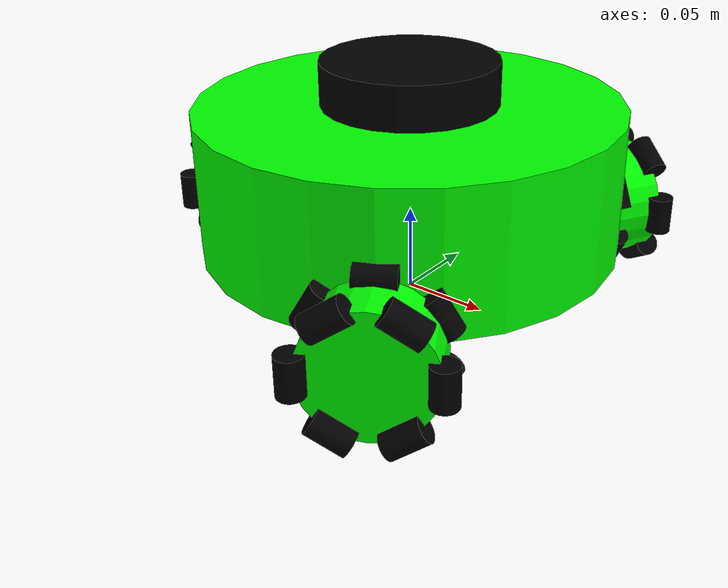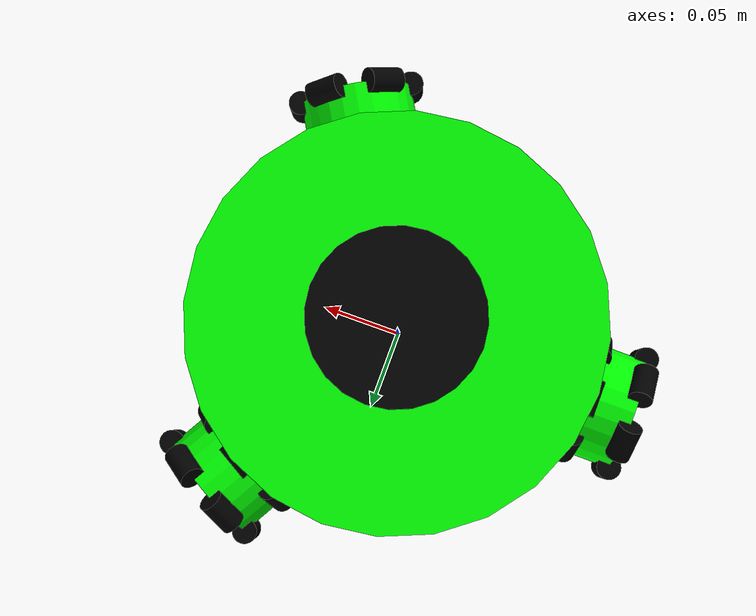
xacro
<?xml version="1.0"?>

<robot name="humblebot" xmlns:xacro="http://www.ros.org/wiki/xacro">

    <!-- Common Properties -->
    <xacro:include filename="$(find humblebot_description)/urdf/common_properties.xacro" />

    <!-- Mobile Base -->
    <xacro:include filename="$(find humblebot_description)/urdf/mobile_base.xacro" />

    <!-- Lidar -->
    <xacro:include filename="$(find humblebot_description)/urdf/lidar.xacro" />

</robot>

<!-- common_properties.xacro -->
<robot xmlns:xacro="http://www.ros.org/wiki/xacro">

    <!-- colors-->

    <material name="green">
        <color rgba="0 1 0 1" />
    </material>

    <material name="black">
        <color rgba="0 0 0 1" />
    </material>

    <!-- Inertia -->

    <xacro:macro name="cylinder_inertia" params="mass radius length o_xyz o_rpy">
        <inertial>
            <origin xyz="${o_xyz}" rpy="${o_rpy}" />
            <mass value="${mass}" />
            <inertia
                ixx="${(1/12.0)*mass*(3*radius*radius + length*length)}" ixy="0.0" ixz="0.0"
                iyy="${(1/12.0)*mass*(3*radius*radius + length*length)}" iyz="0.0"
                izz="${(1/2.0)*mass*radius*radius}"
            />
        </inertial>
    </xacro:macro>

</robot>

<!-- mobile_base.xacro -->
<robot xmlns:xacro="http://www.ros.org/wiki/xacro">

    <!-- variables -->
        <!-- Dimensions are in mm, mass is in grams -->
        <xacro:property name="base_radius" value="0.12" />
        <xacro:property name="base_length" value="0.08" />
        <xacro:property name="base_mass" value="300.0" />

        <xacro:property name="wheel_radius" value="0.035" />
        <xacro:property name="wheel_length" value="0.03" />
        <xacro:property name="wheel_mass" value="20.0" />

        <xacro:property name="roller_radius" value="0.0075" />
        <xacro:property name="roller_length" value="0.022" />
        <xacro:property name="roller_mass" value="3.0" />

    <!-- Calculated/Constant variables -->

        <!-- 60 deg and -60 deg components -->
        <xacro:property name="cos60" value="${0.5}" />
        <xacro:property name="sin60" value="${0.8660254037844386}" />
        <xacro:property name="cos_m60" value="${0.5}" />
        <xacro:property name="sin_m60" value="${-0.8660254037844386}" />
        <!-- 180 deg components -->
        <xacro:property name="cos180" value="${-1.0}" />
        <xacro:property name="sin180" value="${0.0}" />

        <!-- wheel center positions (derived from base radius and angle) -->
        <xacro:property name="wheel60_x" value="${base_radius * cos60}" />
        <xacro:property name="wheel60_y" value="${base_radius * sin60}" />
        <xacro:property name="wheel300_x" value="${base_radius * cos180}" />
        <xacro:property name="wheel300_y" value="${base_radius * sin180}" />
        <xacro:property name="wheel180_x" value="${base_radius * cos_m60}" />
        <xacro:property name="wheel180_y" value="${base_radius * sin_m60}" />
        <xacro:property name="half_wheel_radius" value="${wheel_radius / 2.0}" />

    <!-- macros -->

        <xacro:macro name="wheel_link" params="wheel_degree">
            <link name="wheel_${wheel_degree}deg">
                <visual>
                    <geometry>
                        <cylinder radius="${wheel_radius}" length="${wheel_length}" />
                    </geometry>
                    <origin xyz="0 0 ${wheel_length / 2.0}" rpy="0 0 0" />
                    <material name="green" />
                </visual>
                <collision>
                    <geometry>
                        <cylinder radius="${wheel_radius}" length="${wheel_length}" />
                    </geometry>
                    <origin xyz="0 0 ${wheel_length / 2.0}" rpy="0 0 0" />
                </collision>
                <xacro:cylinder_inertia mass="${wheel_mass / 1000}" radius="${wheel_radius}" length="${wheel_length}" o_xyz="0 0 ${wheel_length / 2.0}" o_rpy="0 0 0" />
            </link>
        </xacro:macro>

        <xacro:macro name="wheel_roller_link" params="wheel_degree roller_index">
            <link name="wheel_${wheel_degree}deg_roller_${roller_index}">
                <visual>
                    <geometry>
                        <cylinder radius="${roller_radius}" length="${roller_length}" />
                    </geometry>
                    <origin xyz="0 0 0" rpy="0 0 0" />
                    <material name="black" />
                </visual>
                <collision>
                    <geometry>
                        <cylinder radius="${roller_radius}" length="${roller_length}" />
                    </geometry>
                    <origin xyz="0 0 0" rpy="0 0 0" />
                </collision>
                <xacro:cylinder_inertia mass="${roller_mass / 1000}" radius="${roller_radius}" length="${roller_length}" o_xyz="0 0 0" o_rpy="0 0 0" />
            </link>
        </xacro:macro>

        <!-- Joint macros -->
        <xacro:macro name="joint_fixed" params="name parent child origin_xyz origin_rpy">
            <joint name="${name}" type="fixed">
                <parent link="${parent}" />
                <child link="${child}" />
                <origin xyz="${origin_xyz}" rpy="${origin_rpy}" />
            </joint>
        </xacro:macro>

        <xacro:macro name="joint_axis" params="name type parent child axis_xyz origin_xyz origin_rpy">
            <joint name="${name}" type="${type}">
                <parent link="${parent}" />
                <child link="${child}" />
                <axis xyz="${axis_xyz}" />
                <origin xyz="${origin_xyz}" rpy="${origin_rpy}" />
            </joint>
        </xacro:macro>

    <!-- Base link -->

        <link name="base_footprint" />

        <link name="base_link">
            <visual>
                <geometry>
                    <cylinder radius="${base_radius}" length="${base_length}" />
                    </geometry>
                    <origin xyz="0 0 ${base_length / 2.0}" rpy="0 0 0" />
                <material name="green" />
            </visual>
            <collision>
                <geometry>
                    <cylinder radius="${base_radius}" length="${base_length}" />
                </geometry>
                <origin xyz="0 0 ${base_length / 2.0}" rpy="0 0 0" />
            </collision>
            <xacro:cylinder_inertia mass="${base_mass / 1000}" radius="${base_radius}" length="${base_length}" o_xyz="0 0 ${base_length / 2.0}" o_rpy="0 0 0" />
        </link>

    <!--Wheel 60deg links-->

        <xacro:wheel_link wheel_degree="60" />
        <xacro:wheel_roller_link wheel_degree="60" roller_index="1" />
        <xacro:wheel_roller_link wheel_degree="60" roller_index="2" />
        <xacro:wheel_roller_link wheel_degree="60" roller_index="3" />
        <xacro:wheel_roller_link wheel_degree="60" roller_index="4" />
        <xacro:wheel_roller_link wheel_degree="60" roller_index="5" />
        <xacro:wheel_roller_link wheel_degree="60" roller_index="6" />
        <xacro:wheel_roller_link wheel_degree="60" roller_index="7" />
        <xacro:wheel_roller_link wheel_degree="60" roller_index="8" />
        <xacro:wheel_roller_link wheel_degree="60" roller_index="9" />
        <xacro:wheel_roller_link wheel_degree="60" roller_index="10" />
        <xacro:wheel_roller_link wheel_degree="60" roller_index="11" />
        <xacro:wheel_roller_link wheel_degree="60" roller_index="12" />

    <!--Wheel 300deg links-->

        <xacro:wheel_link wheel_degree="300" />
        <xacro:wheel_roller_link wheel_degree="300" roller_index="1" />
        <xacro:wheel_roller_link wheel_degree="300" roller_index="2" />
        <xacro:wheel_roller_link wheel_degree="300" roller_index="3" />
        <xacro:wheel_roller_link wheel_degree="300" roller_index="4" />
        <xacro:wheel_roller_link wheel_degree="300" roller_index="5" />
        <xacro:wheel_roller_link wheel_degree="300" roller_index="6" />
        <xacro:wheel_roller_link wheel_degree="300" roller_index="7" />
        <xacro:wheel_roller_link wheel_degree="300" roller_index="8" />
        <xacro:wheel_roller_link wheel_degree="300" roller_index="9" />
        <xacro:wheel_roller_link wheel_degree="300" roller_index="10" />
        <xacro:wheel_roller_link wheel_degree="300" roller_index="11" />
        <xacro:wheel_roller_link wheel_degree="300" roller_index="12" />

    <!--Wheel 180deg links-->

        <xacro:wheel_link wheel_degree="180" />
        <xacro:wheel_roller_link wheel_degree="180" roller_index="1" />
        <xacro:wheel_roller_link wheel_degree="180" roller_index="2" />
        <xacro:wheel_roller_link wheel_degree="180" roller_index="3" />
        <xacro:wheel_roller_link wheel_degree="180" roller_index="4" />
        <xacro:wheel_roller_link wheel_degree="180" roller_index="5" />
        <xacro:wheel_roller_link wheel_degree="180" roller_index="6" />
        <xacro:wheel_roller_link wheel_degree="180" roller_index="7" />
        <xacro:wheel_roller_link wheel_degree="180" roller_index="8" />
        <xacro:wheel_roller_link wheel_degree="180" roller_index="9" />
        <xacro:wheel_roller_link wheel_degree="180" roller_index="10" />
        <xacro:wheel_roller_link wheel_degree="180" roller_index="11" />
        <xacro:wheel_roller_link wheel_degree="180" roller_index="12" />

    <!--Wheel 60deg joints-->

        <xacro:joint_fixed name="base_joint" parent="base_footprint" child="base_link" origin_xyz="0 0 ${wheel_radius}" origin_rpy="0 0 0" />
        <xacro:joint_axis name="base_wheel60_joint" type="continuous" parent="base_link" child="wheel_60deg" axis_xyz="0 0 1" origin_xyz="${wheel60_x} ${wheel60_y} 0" origin_rpy="${-pi / 3.0} ${pi / 2.0} 0" />
        <xacro:joint_axis name="wheel_60deg_roller_1_joint" type="continuous" parent="wheel_60deg" child="wheel_60deg_roller_1" axis_xyz="0 0 1" origin_xyz="${wheel_radius} 0 0" origin_rpy="${pi / 2.0} 0 0" />
        <xacro:joint_axis name="wheel_60deg_roller_2_joint" type="continuous" parent="wheel_60deg" child="wheel_60deg_roller_2" axis_xyz="0 0 1" origin_xyz="-${wheel_radius} 0 0" origin_rpy="${pi / 2.0} 0 0" />
        <xacro:joint_axis name="wheel_60deg_roller_3_joint" type="continuous" parent="wheel_60deg" child="wheel_60deg_roller_3" axis_xyz="0 0 1" origin_xyz="-${half_wheel_radius} ${wheel_length} 0" origin_rpy="${pi / 2.0} 0 ${-pi / 3.0}" />
        <xacro:joint_axis name="wheel_60deg_roller_4_joint" type="continuous" parent="wheel_60deg" child="wheel_60deg_roller_4" axis_xyz="0 0 1" origin_xyz="${half_wheel_radius} -${wheel_length} 0" origin_rpy="${pi / 2.0} 0 ${-pi / 3.0}" />
        <xacro:joint_axis name="wheel_60deg_roller_5_joint" type="continuous" parent="wheel_60deg" child="wheel_60deg_roller_5" axis_xyz="0 0 1" origin_xyz="-${half_wheel_radius} -${wheel_length} 0" origin_rpy="${pi / 2.0} 0 ${pi / 3.0}" />
        <xacro:joint_axis name="wheel_60deg_roller_6_joint" type="continuous" parent="wheel_60deg" child="wheel_60deg_roller_6" axis_xyz="0 0 1" origin_xyz="${half_wheel_radius} ${wheel_length} 0" origin_rpy="${pi / 2.0} 0 ${pi / 3.0}" />
        <xacro:joint_axis name="wheel_60deg_roller_7_joint" type="continuous" parent="wheel_60deg" child="wheel_60deg_roller_7" axis_xyz="0 0 1" origin_xyz="0 ${wheel_radius} ${wheel_length}" origin_rpy="${pi / 2.0} 0 ${pi / 2.0}" />
        <xacro:joint_axis name="wheel_60deg_roller_8_joint" type="continuous" parent="wheel_60deg" child="wheel_60deg_roller_8" axis_xyz="0 0 1" origin_xyz="0 -${wheel_radius} ${wheel_length}" origin_rpy="${pi / 2.0} 0 ${pi / 2.0}" />
        <xacro:joint_axis name="wheel_60deg_roller_9_joint" type="continuous" parent="wheel_60deg" child="wheel_60deg_roller_9" axis_xyz="0 0 1" origin_xyz="-${wheel_length} -${half_wheel_radius} ${wheel_length}" origin_rpy="${pi / 2.0} 0 0.57" />
        <xacro:joint_axis name="wheel_60deg_roller_10_joint" type="continuous" parent="wheel_60deg" child="wheel_60deg_roller_10" axis_xyz="0 0 1" origin_xyz="${wheel_length} ${half_wheel_radius} ${wheel_length}" origin_rpy="${pi / 2.0} 0 0.57" />
        <xacro:joint_axis name="wheel_60deg_roller_11_joint" type="continuous" parent="wheel_60deg" child="wheel_60deg_roller_11" axis_xyz="0 0 1" origin_xyz="-${wheel_length} ${half_wheel_radius} ${wheel_length}" origin_rpy="${pi / 2.0} 0 -0.57" />
        <xacro:joint_axis name="wheel_60deg_roller_12_joint" type="continuous" parent="wheel_60deg" child="wheel_60deg_roller_12" axis_xyz="0 0 1" origin_xyz="${wheel_length} -${half_wheel_radius} ${wheel_length}" origin_rpy="${pi / 2.0} 0 -0.57" />

    <!--Wheel 300deg joints-->

        <xacro:joint_axis name="base_wheel300_joint" type="continuous" parent="base_link" child="wheel_300deg" axis_xyz="0 0 1" origin_xyz="${wheel300_x} ${wheel300_y} 0" origin_rpy="0 ${pi / 2.0} ${pi}" />
        <xacro:joint_axis name="wheel_300deg_roller_1_joint" type="continuous" parent="wheel_300deg" child="wheel_300deg_roller_1" axis_xyz="0 0 1" origin_xyz="${wheel_radius} 0 0" origin_rpy="${pi / 2.0} 0 0" />
        <xacro:joint_axis name="wheel_300deg_roller_2_joint" type="continuous" parent="wheel_300deg" child="wheel_300deg_roller_2" axis_xyz="0 0 1" origin_xyz="-${wheel_radius} 0 0" origin_rpy="${pi / 2.0} 0 0" />
        <xacro:joint_axis name="wheel_300deg_roller_3_joint" type="continuous" parent="wheel_300deg" child="wheel_300deg_roller_3" axis_xyz="0 0 1" origin_xyz="-${half_wheel_radius} ${wheel_length} 0" origin_rpy="${pi / 2.0} 0 ${-pi / 3.0}" />
        <xacro:joint_axis name="wheel_300deg_roller_4_joint" type="continuous" parent="wheel_300deg" child="wheel_300deg_roller_4" axis_xyz="0 0 1" origin_xyz="${half_wheel_radius} -${wheel_length} 0" origin_rpy="${pi / 2.0} 0 ${-pi / 3.0}" />
        <xacro:joint_axis name="wheel_300deg_roller_5_joint" type="continuous" parent="wheel_300deg" child="wheel_300deg_roller_5" axis_xyz="0 0 1" origin_xyz="-${half_wheel_radius} -${wheel_length} 0" origin_rpy="${pi / 2.0} 0 ${pi / 3.0}" />
        <xacro:joint_axis name="wheel_300deg_roller_6_joint" type="continuous" parent="wheel_300deg" child="wheel_300deg_roller_6" axis_xyz="0 0 1" origin_xyz="${half_wheel_radius} ${wheel_length} 0" origin_rpy="${pi / 2.0} 0 ${pi / 3.0}" />
        <xacro:joint_axis name="wheel_300deg_roller_7_joint" type="continuous" parent="wheel_300deg" child="wheel_300deg_roller_7" axis_xyz="0 0 1" origin_xyz="0 ${wheel_radius} ${wheel_length}" origin_rpy="${pi / 2.0} 0 ${pi / 2.0}" />
        <xacro:joint_axis name="wheel_300deg_roller_8_joint" type="continuous" parent="wheel_300deg" child="wheel_300deg_roller_8" axis_xyz="0 0 1" origin_xyz="0 -${wheel_radius} ${wheel_length}" origin_rpy="${pi / 2.0} 0 ${pi / 2.0}" />
        <xacro:joint_axis name="wheel_300deg_roller_9_joint" type="continuous" parent="wheel_300deg" child="wheel_300deg_roller_9" axis_xyz="0 0 1" origin_xyz="-${wheel_length} -${half_wheel_radius} ${wheel_length}" origin_rpy="${pi / 2.0} 0 0.57" />
        <xacro:joint_axis name="wheel_300deg_roller_10_joint" type="continuous" parent="wheel_300deg" child="wheel_300deg_roller_10" axis_xyz="0 0 1" origin_xyz="${wheel_length} ${half_wheel_radius} ${wheel_length}" origin_rpy="${pi / 2.0} 0 0.57" />
        <xacro:joint_axis name="wheel_300deg_roller_11_joint" type="continuous" parent="wheel_300deg" child="wheel_300deg_roller_11" axis_xyz="0 0 1" origin_xyz="-${wheel_length} ${half_wheel_radius} ${wheel_length}" origin_rpy="${pi / 2.0} 0 -0.57" />
        <xacro:joint_axis name="wheel_300deg_roller_12_joint" type="continuous" parent="wheel_300deg" child="wheel_300deg_roller_12" axis_xyz="0 0 1" origin_xyz="${wheel_length} -${half_wheel_radius} ${wheel_length}" origin_rpy="${pi / 2.0} 0 -0.57" />

    <!--Wheel 180deg joints-->

        <xacro:joint_axis name="base_wheel180_joint" type="continuous" parent="base_link" child="wheel_180deg" axis_xyz="0 0 1" origin_xyz="${wheel180_x} ${wheel180_y} 0" origin_rpy="1.04 ${pi / 2.0} 0" />
        <xacro:joint_axis name="wheel_180deg_roller_1_joint" type="continuous" parent="wheel_180deg" child="wheel_180deg_roller_1" axis_xyz="0 0 1" origin_xyz="${wheel_radius} 0 0" origin_rpy="${pi / 2.0} 0 0" />
        <xacro:joint_axis name="wheel_180deg_roller_2_joint" type="continuous" parent="wheel_180deg" child="wheel_180deg_roller_2" axis_xyz="0 0 1" origin_xyz="-${wheel_radius} 0 0" origin_rpy="${pi / 2.0} 0 0" />
        <xacro:joint_axis name="wheel_180deg_roller_3_joint" type="continuous" parent="wheel_180deg" child="wheel_180deg_roller_3" axis_xyz="0 0 1" origin_xyz="-${half_wheel_radius} ${wheel_length} 0" origin_rpy="${pi / 2.0} 0 ${-pi / 3.0}" />
        <xacro:joint_axis name="wheel_180deg_roller_4_joint" type="continuous" parent="wheel_180deg" child="wheel_180deg_roller_4" axis_xyz="0 0 1" origin_xyz="${half_wheel_radius} -${wheel_length} 0" origin_rpy="${pi / 2.0} 0 ${-pi / 3.0}" />
        <xacro:joint_axis name="wheel_180deg_roller_5_joint" type="continuous" parent="wheel_180deg" child="wheel_180deg_roller_5" axis_xyz="0 0 1" origin_xyz="-${half_wheel_radius} -${wheel_length} 0" origin_rpy="${pi / 2.0} 0 ${pi / 3.0}" />
        <xacro:joint_axis name="wheel_180deg_roller_6_joint" type="continuous" parent="wheel_180deg" child="wheel_180deg_roller_6" axis_xyz="0 0 1" origin_xyz="${half_wheel_radius} ${wheel_length} 0" origin_rpy="${pi / 2.0} 0 ${pi / 3.0}" />
        <xacro:joint_axis name="wheel_180deg_roller_7_joint" type="continuous" parent="wheel_180deg" child="wheel_180deg_roller_7" axis_xyz="0 0 1" origin_xyz="0 ${wheel_radius} ${wheel_length}" origin_rpy="${pi / 2.0} 0 ${pi / 2.0}" />
        <xacro:joint_axis name="wheel_180deg_roller_8_joint" type="continuous" parent="wheel_180deg" child="wheel_180deg_roller_8" axis_xyz="0 0 1" origin_xyz="0 -${wheel_radius} ${wheel_length}" origin_rpy="${pi / 2.0} 0 ${pi / 2.0}" />
        <xacro:joint_axis name="wheel_180deg_roller_9_joint" type="continuous" parent="wheel_180deg" child="wheel_180deg_roller_9" axis_xyz="0 0 1" origin_xyz="-${wheel_length} -${half_wheel_radius} ${wheel_length}" origin_rpy="${pi / 2.0} 0 0.57" />
        <xacro:joint_axis name="wheel_180deg_roller_10_joint" type="continuous" parent="wheel_180deg" child="wheel_180deg_roller_10" axis_xyz="0 0 1" origin_xyz="${wheel_length} ${half_wheel_radius} ${wheel_length}" origin_rpy="${pi / 2.0} 0 0.57" />
        <xacro:joint_axis name="wheel_180deg_roller_11_joint" type="continuous" parent="wheel_180deg" child="wheel_180deg_roller_11" axis_xyz="0 0 1" origin_xyz="-${wheel_length} ${half_wheel_radius} ${wheel_length}" origin_rpy="${pi / 2.0} 0 -0.57" />
        <xacro:joint_axis name="wheel_180deg_roller_12_joint" type="continuous" parent="wheel_180deg" child="wheel_180deg_roller_12" axis_xyz="0 0 1" origin_xyz="${wheel_length} -${half_wheel_radius} ${wheel_length}" origin_rpy="${pi / 2.0} 0 -0.57" />

</robot>

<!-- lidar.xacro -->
<robot xmlns:xacro="http://www.ros.org/wiki/xacro">

    <!-- Lidar -->

    <link name="laser_frame">
        <visual>
            <origin xyz="0 0 0.08" rpy="0 0 0" />
            <geometry>
                <cylinder radius="0.05" length="0.05" />
            </geometry>
            <material name="black"/>
        </visual>

        <xacro:cylinder_inertia mass="0.5" radius="0.05" length="0.1" o_xyz="0 0 0.05" o_rpy="0 0 0"/>
    </link>

    <joint name="lidar_joint" type="fixed">
        <parent link="base_link"/>
        <child link="laser_frame"/>
        <origin xyz="0 0 0" rpy="0 0 0"/>
    </joint>

</robot>
